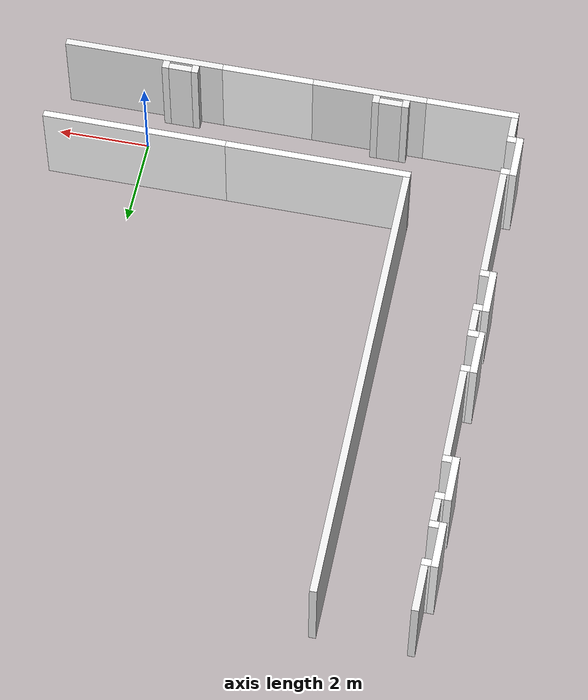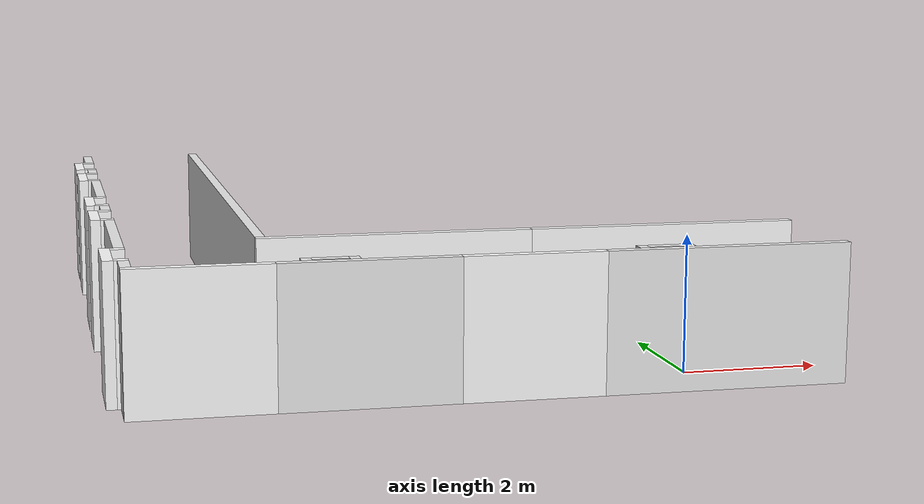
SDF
<?xml version='1.0'?>
<sdf version='1.6'>
  <model name='turtlebot_model_13'>
    <pose frame=''>-3.109 5 0 0 -0 0</pose>
    <link name='Wall_0'>
      <collision name='Wall_0_Collision'>
        <geometry>
          <box>
            <size>4 0.15 2</size>
          </box>
        </geometry>
        <pose frame=''>0 0 1 0 -0 0</pose>
      </collision>
      <visual name='Wall_0_Visual'>
        <pose frame=''>0 0 1 0 -0 0</pose>
        <geometry>
          <box>
            <size>4 0.15 2</size>
          </box>
        </geometry>
        <material>
          <script>
              <uri>file://media/materials/scripts/gazebo.material</uri>
              <name>Gazebo/Wall</name>
          </script>
          <ambient>1 1 1 1</ambient>
        </material>
        <meta>
          <layer>0</layer>
        </meta>
      </visual>
      <pose frame=''>3.095 -4 0 0 -0 0</pose>
    </link>
    <link name='Wall_15'>
      <collision name='Wall_15_Collision'>
        <geometry>
          <box>
            <size>2 0.15 2</size>
          </box>
        </geometry>
        <pose frame=''>0 0 1 0 -0 0</pose>
      </collision>
      <visual name='Wall_15_Visual'>
        <pose frame=''>0 0 1 0 -0 0</pose>
        <geometry>
          <box>
            <size>2 0.15 2</size>
          </box>
        </geometry>
        <material>
          <script>
              <uri>file://media/materials/scripts/gazebo.material</uri>
              <name>Gazebo/Door1</name>
          </script>
          <ambient>1 1 1 1</ambient>
        </material>
        <meta>
          <layer>0</layer>
        </meta>
      </visual>
      <pose frame=''>-3.895 -6 0 0 -0 0</pose>
    </link>
    <link name='Wall_17'>
      <collision name='Wall_17_Collision'>
        <geometry>
          <box>
            <size>2.49 0.15 2</size>
          </box>
        </geometry>
        <pose frame=''>0 0 1 0 -0 0</pose>
      </collision>
      <visual name='Wall_17_Visual'>
        <pose frame=''>0 0 1 0 -0 0</pose>
        <geometry>
          <box>
            <size>2.49 0.15 2</size>
          </box>
        </geometry>
        <material>
          <script>
              <uri>file://media/materials/scripts/gazebo.material</uri>
              <name>Gazebo/WhiteWall</name>
          </script>
          <ambient>1 1 1 1</ambient>
        </material>
        <meta>
          <layer>0</layer>
        </meta>
      </visual>
      <pose frame=''>-1.65 -6 0 0 -0 0</pose>
    </link>
    <link name='Wall_2'>
      <collision name='Wall_2_Collision'>
        <geometry>
          <box>
            <size>4 0.15 2</size>
          </box>
        </geometry>
        <pose frame=''>0 0 1 0 -0 0</pose>
      </collision>
      <visual name='Wall_2_Visual'>
        <pose frame=''>0 0 1 0 -0 0</pose>
        <geometry>
          <box>
            <size>4 0.15 2</size>
          </box>
        </geometry>
        <material>
          <script>
              <uri>file://media/materials/scripts/gazebo.material</uri>
              <name>Gazebo/Wall</name>
          </script>
          <ambient>1 1 1 1</ambient>
        </material>
        <meta>
          <layer>0</layer>
        </meta>
      </visual>
      <pose frame=''>-0.905 -4 0 0 -0 3.14159</pose>
    </link>
    <link name='Wall_20'>
      <collision name='Wall_20_Collision'>
        <geometry>
          <box>
            <size>0.5 0.15 2</size>
          </box>
        </geometry>
        <pose frame=''>0 0 1 0 -0 0</pose>
      </collision>
      <visual name='Wall_20_Visual'>
        <pose frame=''>0 0 1 0 -0 0</pose>
        <geometry>
          <box>
            <size>0.5 0.15 2</size>
          </box>
        </geometry>
        <material>
          <script>
              <uri>file://media/materials/scripts/gazebo.material</uri>
              <name>Gazebo/WhiteWall</name>
          </script>
          <ambient>1 1 1 1</ambient>
        </material>
        <meta>
          <layer>0</layer>
        </meta>
      </visual>
      <pose frame=''>-4.82 -5.675 0 0 -0 1.5708</pose>
    </link>
    <link name='Wall_24'>
      <collision name='Wall_24_Collision'>
        <geometry>
          <box>
            <size>2.496 0.15 2</size>
          </box>
        </geometry>
        <pose frame=''>0 0 1 0 -0 0</pose>
      </collision>
      <visual name='Wall_24_Visual'>
        <pose frame=''>0 0 1 0 -0 0</pose>
        <geometry>
          <box>
            <size>2.496 0.15 2</size>
          </box>
        </geometry>
        <material>
          <script>
              <uri>file://media/materials/scripts/gazebo.material</uri>
              <name>Gazebo/WhiteWall</name>
          </script>
          <ambient>1 1 1 1</ambient>
        </material>
        <meta>
          <layer>0</layer>
        </meta>
      </visual>
      <pose frame=''>-4.82 -3.173 0 0 -0 1.5708</pose>
    </link>
    <link name='Wall_26'>
      <collision name='Wall_26_Collision'>
        <geometry>
          <box>
            <size>1 0.15 2</size>
          </box>
        </geometry>
        <pose frame=''>0 0 1 0 -0 0</pose>
      </collision>
      <visual name='Wall_26_Visual'>
        <pose frame=''>0 0 1 0 -0 0</pose>
        <geometry>
          <box>
            <size>1 0.15 2</size>
          </box>
        </geometry>
        <material>
          <script>
              <uri>file://media/materials/scripts/gazebo.material</uri>
              <name>Gazebo/Door</name>
          </script>
          <ambient>1 1 1 1</ambient>
        </material>
        <meta>
          <layer>0</layer>
        </meta>
      </visual>
      <pose frame=''>-5.02 -1.425 0 0 -0 1.5708</pose>
    </link>
    <link name='Wall_28'>
      <collision name='Wall_28_Collision'>
        <geometry>
          <box>
            <size>0.5 0.15 2</size>
          </box>
        </geometry>
        <pose frame=''>0 0 1 0 -0 0</pose>
      </collision>
      <visual name='Wall_28_Visual'>
        <pose frame=''>0 0 1 0 -0 0</pose>
        <geometry>
          <box>
            <size>0.5 0.15 2</size>
          </box>
        </geometry>
        <material>
          <script>
              <uri>file://media/materials/scripts/gazebo.material</uri>
              <name>Gazebo/WhiteWall</name>
          </script>
          <ambient>1 1 1 1</ambient>
        </material>
        <meta>
          <layer>0</layer>
        </meta>
      </visual>
      <pose frame=''>-4.82 -0.675001 0 0 -0 1.5708</pose>
    </link>
    <link name='Wall_30'>
      <collision name='Wall_30_Collision'>
        <geometry>
          <box>
            <size>1 0.15 2</size>
          </box>
        </geometry>
        <pose frame=''>0 0 1 0 -0 0</pose>
      </collision>
      <visual name='Wall_30_Visual'>
        <pose frame=''>0 0 1 0 -0 0</pose>
        <geometry>
          <box>
            <size>1 0.15 2</size>
          </box>
        </geometry>
        <material>
          <script>
              <uri>file://media/materials/scripts/gazebo.material</uri>
              <name>Gazebo/Door</name>
          </script>
          <ambient>1 1 1 1</ambient>
        </material>
        <meta>
          <layer>0</layer>
        </meta>
      </visual>
      <pose frame=''>-5.02 0.074999 0 0 -0 1.5708</pose>
    </link>
    <link name='Wall_32'>
      <collision name='Wall_32_Collision'>
        <geometry>
          <box>
            <size>2 0.15 2</size>
          </box>
        </geometry>
        <pose frame=''>0 0 1 0 -0 0</pose>
      </collision>
      <visual name='Wall_32_Visual'>
        <pose frame=''>0 0 1 0 -0 0</pose>
        <geometry>
          <box>
            <size>2 0.15 2</size>
          </box>
        </geometry>
        <material>
          <script>
              <uri>file://media/materials/scripts/gazebo.material</uri>
              <name>Gazebo/WhiteWall</name>
          </script>
          <ambient>1 1 1 1</ambient>
        </material>
        <meta>
          <layer>0</layer>
        </meta>
      </visual>
      <pose frame=''>-4.82 1.575 0 0 -0 1.5708</pose>
    </link>
    <link name='Wall_37'>
      <collision name='Wall_37_Collision'>
        <geometry>
          <box>
            <size>1 0.15 2</size>
          </box>
        </geometry>
        <pose frame=''>0 0 1 0 -0 0</pose>
      </collision>
      <visual name='Wall_37_Visual'>
        <pose frame=''>0 0 1 0 -0 0</pose>
        <geometry>
          <box>
            <size>1 0.15 2</size>
          </box>
        </geometry>
        <material>
          <script>
              <uri>file://media/materials/scripts/gazebo.material</uri>
              <name>Gazebo/Door</name>
          </script>
          <ambient>1 1 1 1</ambient>
        </material>
        <meta>
          <layer>0</layer>
        </meta>
      </visual>
      <pose frame=''>-5.02 3.075 0 0 -0 1.5708</pose>
    </link>
    <link name='Wall_4'>
      <collision name='Wall_4_Collision'>
        <geometry>
          <box>
            <size>10 0.15 2</size>
          </box>
        </geometry>
        <pose frame=''>0 0 1 0 -0 0</pose>
      </collision>
      <visual name='Wall_4_Visual'>
        <pose frame=''>0 0 1 0 -0 0</pose>
        <geometry>
          <box>
            <size>10 0.15 2</size>
          </box>
        </geometry>
        <material>
          <script>
              <uri>file://media/materials/scripts/gazebo.material</uri>
              <name>Gazebo/WhiteWall</name>
          </script>
          <ambient>1 1 1 1</ambient>
        </material>
        <meta>
          <layer>0</layer>
        </meta>
      </visual>
      <pose frame=''>-2.83 1.075 0 0 -0 1.5708</pose>
    </link>
    <link name='Wall_40'>
      <collision name='Wall_40_Collision'>
        <geometry>
          <box>
            <size>0.5 0.15 2</size>
          </box>
        </geometry>
        <pose frame=''>0 0 1 0 -0 0</pose>
      </collision>
      <visual name='Wall_40_Visual'>
        <pose frame=''>0 0 1 0 -0 0</pose>
        <geometry>
          <box>
            <size>0.5 0.15 2</size>
          </box>
        </geometry>
        <material>
          <script>
              <uri>file://media/materials/scripts/gazebo.material</uri>
              <name>Gazebo/WhiteWall</name>
          </script>
          <ambient>1 1 1 1</ambient>
        </material>
        <meta>
          <layer>0</layer>
        </meta>
      </visual>
      <pose frame=''>-4.82 3.825 0 0 -0 1.5708</pose>
    </link>
    <link name='Wall_42'>
      <collision name='Wall_42_Collision'>
        <geometry>
          <box>
            <size>1 0.15 2</size>
          </box>
        </geometry>
        <pose frame=''>0 0 1 0 -0 0</pose>
      </collision>
      <visual name='Wall_42_Visual'>
        <pose frame=''>0 0 1 0 -0 0</pose>
        <geometry>
          <box>
            <size>1 0.15 2</size>
          </box>
        </geometry>
        <material>
          <script>
              <uri>file://media/materials/scripts/gazebo.material</uri>
              <name>Gazebo/Door</name>
          </script>
          <ambient>1 1 1 1</ambient>
        </material>
        <meta>
          <layer>0</layer>
        </meta>
      </visual>
      <pose frame=''>-5.02 4.575 0 0 -0 1.5708</pose>
    </link>
    <link name='Wall_44'>
      <collision name='Wall_44_Collision'>
        <geometry>
          <box>
            <size>1 0.15 2</size>
          </box>
        </geometry>
        <pose frame=''>0 0 1 0 -0 0</pose>
      </collision>
      <visual name='Wall_44_Visual'>
        <pose frame=''>0 0 1 0 -0 0</pose>
        <geometry>
          <box>
            <size>1 0.15 2</size>
          </box>
        </geometry>
        <material>
          <script>
              <uri>file://media/materials/scripts/gazebo.material</uri>
              <name>Gazebo/WhiteWall</name>
          </script>
          <ambient>1 1 1 1</ambient>
        </material>
        <meta>
          <layer>0</layer>
        </meta>
      </visual>
      <pose frame=''>-4.82 5.575 0 0 -0 1.5708</pose>
    </link>
    <link name='Wall_46'>
      <collision name='Wall_46_Collision'>
        <geometry>
          <box>
            <size>0.2 0.15 2</size>
          </box>
        </geometry>
        <pose frame=''>0 0 1 0 -0 0</pose>
      </collision>
      <visual name='Wall_46_Visual'>
        <pose frame=''>0 0 1 0 -0 0</pose>
        <geometry>
          <box>
            <size>0.2 0.15 2</size>
          </box>
        </geometry>
        <material>
          <script>
              <uri>file://media/materials/scripts/gazebo.material</uri>
              <name>Gazebo/WhiteWall</name>
          </script>
          <ambient>1 1 1 1</ambient>
        </material>
        <meta>
          <layer>0</layer>
        </meta>
      </visual>
      <pose frame=''>2.17 -5.825 0 0 -0 1.5708</pose>
    </link>
    <link name='Wall_51'>
      <collision name='Wall_51_Collision'>
        <geometry>
          <box>
            <size>0.5 0.15 2</size>
          </box>
        </geometry>
        <pose frame=''>0 0 1 0 -0 0</pose>
      </collision>
      <visual name='Wall_51_Visual'>
        <pose frame=''>0 0 1 0 -0 0</pose>
        <geometry>
          <box>
            <size>0.5 0.15 2</size>
          </box>
        </geometry>
        <material>
          <script>
              <uri>file://media/materials/scripts/gazebo.material</uri>
              <name>Gazebo/WhiteWall</name>
          </script>
          <ambient>1 1 1 1</ambient>
        </material>
        <meta>
          <layer>0</layer>
        </meta>
      </visual>
      <pose frame=''>2.495 -5.8 0 0 -0 0</pose>
    </link>
    <link name='Wall_56'>
      <collision name='Wall_56_Collision'>
        <geometry>
          <box>
            <size>0.2 0.15 2</size>
          </box>
        </geometry>
        <pose frame=''>0 0 1 0 -0 0</pose>
      </collision>
      <visual name='Wall_56_Visual'>
        <pose frame=''>0 0 1 0 -0 0</pose>
        <geometry>
          <box>
            <size>0.2 0.15 2</size>
          </box>
        </geometry>
        <material>
          <script>
              <uri>file://media/materials/scripts/gazebo.material</uri>
              <name>Gazebo/WhiteWall</name>
          </script>
          <ambient>1 1 1 1</ambient>
        </material>
        <meta>
          <layer>0</layer>
        </meta>
      </visual>
      <pose frame=''>2.82 -5.825 0 0 -0 1.5708</pose>
    </link>
    <link name='Wall_58'>
      <collision name='Wall_58_Collision'>
        <geometry>
          <box>
            <size>0.2 0.15 2</size>
          </box>
        </geometry>
        <pose frame=''>0 0 1 0 -0 0</pose>
      </collision>
      <visual name='Wall_58_Visual'>
        <pose frame=''>0 0 1 0 -0 0</pose>
        <geometry>
          <box>
            <size>0.2 0.15 2</size>
          </box>
        </geometry>
        <material>
          <script>
              <uri>file://media/materials/scripts/gazebo.material</uri>
              <name>Gazebo/WhiteWall</name>
          </script>
          <ambient>1 1 1 1</ambient>
        </material>
        <meta>
          <layer>0</layer>
        </meta>
      </visual>
      <pose frame=''>-2.47 -5.825 0 0 -0 1.5708</pose>
    </link>
    <link name='Wall_6'>
      <collision name='Wall_6_Collision'>
        <geometry>
          <box>
            <size>3.5 0.15 2</size>
          </box>
        </geometry>
        <pose frame=''>0 0 1 0 -0 0</pose>
      </collision>
      <visual name='Wall_6_Visual'>
        <pose frame=''>0 0 1 0 -0 0</pose>
        <geometry>
          <box>
            <size>3.5 0.15 2</size>
          </box>
        </geometry>
        <material>
          <script>
              <uri>file://media/materials/scripts/gazebo.material</uri>
              <name>Gazebo/WhiteWall</name>
          </script>
          <ambient>1 1 1 1</ambient>
        </material>
        <meta>
          <layer>0</layer>
        </meta>
      </visual>
      <pose frame=''>3.345 -6 0 0 -0 3.14159</pose>
    </link>
    <link name='Wall_61'>
      <collision name='Wall_61_Collision'>
        <geometry>
          <box>
            <size>0.5 0.15 2</size>
          </box>
        </geometry>
        <pose frame=''>0 0 1 0 -0 0</pose>
      </collision>
      <visual name='Wall_61_Visual'>
        <pose frame=''>0 0 1 0 -0 0</pose>
        <geometry>
          <box>
            <size>0.5 0.15 2</size>
          </box>
        </geometry>
        <material>
          <script>
              <uri>file://media/materials/scripts/gazebo.material</uri>
              <name>Gazebo/WhiteWall</name>
          </script>
          <ambient>1 1 1 1</ambient>
        </material>
        <meta>
          <layer>0</layer>
        </meta>
      </visual>
      <pose frame=''>-2.145 -5.8 0 0 -0 0</pose>
    </link>
    <link name='Wall_63'>
      <collision name='Wall_63_Collision'>
        <geometry>
          <box>
            <size>0.2 0.15 2</size>
          </box>
        </geometry>
        <pose frame=''>0 0 1 0 -0 0</pose>
      </collision>
      <visual name='Wall_63_Visual'>
        <pose frame=''>0 0 1 0 -0 0</pose>
        <geometry>
          <box>
            <size>0.2 0.15 2</size>
          </box>
        </geometry>
        <material>
          <script>
              <uri>file://media/materials/scripts/gazebo.material</uri>
              <name>Gazebo/WhiteWall</name>
          </script>
          <ambient>1 1 1 1</ambient>
        </material>
        <meta>
          <layer>0</layer>
        </meta>
      </visual>
      <pose frame=''>-1.82 -5.825 0 0 -0 1.5708</pose>
    </link>
    <link name='Wall_68'>
      <collision name='Wall_68_Collision'>
        <geometry>
          <box>
            <size>0.2 0.15 2</size>
          </box>
        </geometry>
        <pose frame=''>0 0 1 0 -0 0</pose>
      </collision>
      <visual name='Wall_68_Visual'>
        <pose frame=''>0 0 1 0 -0 0</pose>
        <geometry>
          <box>
            <size>0.2 0.15 2</size>
          </box>
        </geometry>
        <material>
          <script>
              <uri>file://media/materials/scripts/gazebo.material</uri>
              <name>Gazebo/Border</name>
          </script>
          <ambient>1 1 1 1</ambient>
        </material>
        <meta>
          <layer>0</layer>
        </meta>
      </visual>
      <pose frame=''>-4.845 -4.496 0 0 -0 3.14159</pose>
    </link>
    <link name='Wall_72'>
      <collision name='Wall_72_Collision'>
        <geometry>
          <box>
            <size>0.2 0.15 2</size>
          </box>
        </geometry>
        <pose frame=''>0 0 1 0 -0 0</pose>
      </collision>
      <visual name='Wall_72_Visual'>
        <pose frame=''>0 0 1 0 -0 0</pose>
        <geometry>
          <box>
            <size>0.2 0.15 2</size>
          </box>
        </geometry>
        <material>
          <script>
              <uri>file://media/materials/scripts/gazebo.material</uri>
              <name>Gazebo/Border</name>
          </script>
          <ambient>1 1 1 1</ambient>
        </material>
        <meta>
          <layer>0</layer>
        </meta>
      </visual>
      <pose frame=''>-4.845 -5.35 0 0 -0 3.14159</pose>
    </link>
    <link name='Wall_74'>
      <collision name='Wall_74_Collision'>
        <geometry>
          <box>
            <size>1.004 0.15 2</size>
          </box>
        </geometry>
        <pose frame=''>0 0 1 0 -0 0</pose>
      </collision>
      <visual name='Wall_74_Visual'>
        <pose frame=''>0 0 1 0 -0 0</pose>
        <geometry>
          <box>
            <size>1.004 0.15 2</size>
          </box>
        </geometry>
        <material>
          <script>
              <uri>file://media/materials/scripts/gazebo.material</uri>
              <name>Gazebo/Door</name>
          </script>
          <ambient>1 1 1 1</ambient>
        </material>
        <meta>
          <layer>0</layer>
        </meta>
      </visual>
      <pose frame=''>-5.02 -4.923 0 0 0 -1.5708</pose>
    </link>
    <link name='Wall_76'>
      <collision name='Wall_76_Collision'>
        <geometry>
          <box>
            <size>0.2 0.15 2</size>
          </box>
        </geometry>
        <pose frame=''>0 0 1 0 -0 0</pose>
      </collision>
      <visual name='Wall_76_Visual'>
        <pose frame=''>0 0 1 0 -0 0</pose>
        <geometry>
          <box>
            <size>0.2 0.15 2</size>
          </box>
        </geometry>
        <material>
          <script>
              <uri>file://media/materials/scripts/gazebo.material</uri>
              <name>Gazebo/Border</name>
          </script>
          <ambient>1 1 1 1</ambient>
        </material>
        <meta>
          <layer>0</layer>
        </meta>
      </visual>
      <pose frame=''>-4.845 -1 0 0 -0 3.14159</pose>
    </link>
    <link name='Wall_8'>
      <collision name='Wall_8_Collision'>
        <geometry>
          <box>
            <size>2 0.15 2</size>
          </box>
        </geometry>
        <pose frame=''>0 0 1 0 -0 0</pose>
      </collision>
      <visual name='Wall_8_Visual'>
        <pose frame=''>0 0 1 0 -0 0</pose>
        <geometry>
          <box>
            <size>2 0.15 2</size>
          </box>
        </geometry>
        <material>
          <script>
              <uri>file://media/materials/scripts/gazebo.material</uri>
              <name>Gazebo/Door1</name>
          </script>
          <ambient>1 1 1 1</ambient>
        </material>
        <meta>
          <layer>0</layer>
        </meta>
      </visual>
      <pose frame=''>0.595 -6 0 0 -0 3.14159</pose>
    </link>
    <link name='Wall_81'>
      <collision name='Wall_81_Collision'>
        <geometry>
          <box>
            <size>0.2 0.15 2</size>
          </box>
        </geometry>
        <pose frame=''>0 0 1 0 -0 0</pose>
      </collision>
      <visual name='Wall_81_Visual'>
        <pose frame=''>0 0 1 0 -0 0</pose>
        <geometry>
          <box>
            <size>0.2 0.15 2</size>
          </box>
        </geometry>
        <material>
          <script>
              <uri>file://media/materials/scripts/gazebo.material</uri>
              <name>Gazebo/Border</name>
          </script>
          <ambient>1 1 1 1</ambient>
        </material>
        <meta>
          <layer>0</layer>
        </meta>
      </visual>
      <pose frame=''>-4.845 -1.85 0 0 -0 3.14159</pose>
    </link>
    <link name='Wall_84'>
      <collision name='Wall_84_Collision'>
        <geometry>
          <box>
            <size>0.2 0.15 2</size>
          </box>
        </geometry>
        <pose frame=''>0 0 1 0 -0 0</pose>
      </collision>
      <visual name='Wall_84_Visual'>
        <pose frame=''>0 0 1 0 -0 0</pose>
        <geometry>
          <box>
            <size>0.2 0.15 2</size>
          </box>
        </geometry>
        <material>
          <script>
              <uri>file://media/materials/scripts/gazebo.material</uri>
              <name>Gazebo/Border</name>
          </script>
          <ambient>1 1 1 1</ambient>
        </material>
        <meta>
          <layer>0</layer>
        </meta>
      </visual>
      <pose frame=''>-4.845 0.5 0 0 -0 3.14159</pose>
    </link>
    <link name='Wall_86'>
      <collision name='Wall_86_Collision'>
        <geometry>
          <box>
            <size>0.23 0.15 2</size>
          </box>
        </geometry>
        <pose frame=''>0 0 1 0 -0 0</pose>
      </collision>
      <visual name='Wall_86_Visual'>
        <pose frame=''>0 0 1 0 -0 0</pose>
        <geometry>
          <box>
            <size>0.23 0.15 2</size>
          </box>
        </geometry>
        <material>
          <script>
              <uri>file://media/materials/scripts/gazebo.material</uri>
              <name>Gazebo/Border</name>
          </script>
          <ambient>1 1 1 1</ambient>
        </material>
        <meta>
          <layer>0</layer>
        </meta>
      </visual>
      <pose frame=''>-4.86 -0.35 0 0 -0 3.14159</pose>
    </link>
    <link name='Wall_91'>
      <collision name='Wall_91_Collision'>
        <geometry>
          <box>
            <size>0.2 0.15 2</size>
          </box>
        </geometry>
        <pose frame=''>0 0 1 0 -0 0</pose>
      </collision>
      <visual name='Wall_91_Visual'>
        <pose frame=''>0 0 1 0 -0 0</pose>
        <geometry>
          <box>
            <size>0.2 0.15 2</size>
          </box>
        </geometry>
        <material>
          <script>
              <uri>file://media/materials/scripts/gazebo.material</uri>
              <name>Gazebo/Border</name>
          </script>
          <ambient>1 1 1 1</ambient>
        </material>
        <meta>
          <layer>0</layer>
        </meta>
      </visual>
      <pose frame=''>-4.845 3.5 0 0 -0 3.14159</pose>
    </link>
    <link name='Wall_93'>
      <collision name='Wall_93_Collision'>
        <geometry>
          <box>
            <size>0.2 0.15 2</size>
          </box>
        </geometry>
        <pose frame=''>0 0 1 0 -0 0</pose>
      </collision>
      <visual name='Wall_93_Visual'>
        <pose frame=''>0 0 1 0 -0 0</pose>
        <geometry>
          <box>
            <size>0.2 0.15 2</size>
          </box>
        </geometry>
        <material>
          <script>
              <uri>file://media/materials/scripts/gazebo.material</uri>
              <name>Gazebo/Border</name>
          </script>
          <ambient>1 1 1 1</ambient>
        </material>
        <meta>
          <layer>0</layer>
        </meta>
      </visual>
      <pose frame=''>-4.845 2.65 0 0 -0 3.14159</pose>
    </link>
    <link name='Wall_95'>
      <collision name='Wall_95_Collision'>
        <geometry>
          <box>
            <size>0.2 0.15 2</size>
          </box>
        </geometry>
        <pose frame=''>0 0 1 0 -0 0</pose>
      </collision>
      <visual name='Wall_95_Visual'>
        <pose frame=''>0 0 1 0 -0 0</pose>
        <geometry>
          <box>
            <size>0.2 0.15 2</size>
          </box>
        </geometry>
        <material>
          <script>
              <uri>file://media/materials/scripts/gazebo.material</uri>
              <name>Gazebo/Border</name>
          </script>
          <ambient>1 1 1 1</ambient>
        </material>
        <meta>
          <layer>0</layer>
        </meta>
      </visual>
      <pose frame=''>-4.845 4.15 0 0 -0 3.14159</pose>
    </link>
    <link name='Wall_97'>
      <collision name='Wall_97_Collision'>
        <geometry>
          <box>
            <size>0.2 0.15 2</size>
          </box>
        </geometry>
        <pose frame=''>0 0 1 0 -0 0</pose>
      </collision>
      <visual name='Wall_97_Visual'>
        <pose frame=''>0 0 1 0 -0 0</pose>
        <geometry>
          <box>
            <size>0.2 0.15 2</size>
          </box>
        </geometry>
        <material>
          <script>
              <uri>file://media/materials/scripts/gazebo.material</uri>
              <name>Gazebo/Border</name>
	  </script>
          <ambient>1 1 1 1</ambient>
        </material>
        <meta>
          <layer>0</layer>
        </meta>
      </visual>
      <pose frame=''>-4.845 5 0 0 -0 3.14159</pose>
    </link>
    <static>1</static>
  </model>
</sdf>
